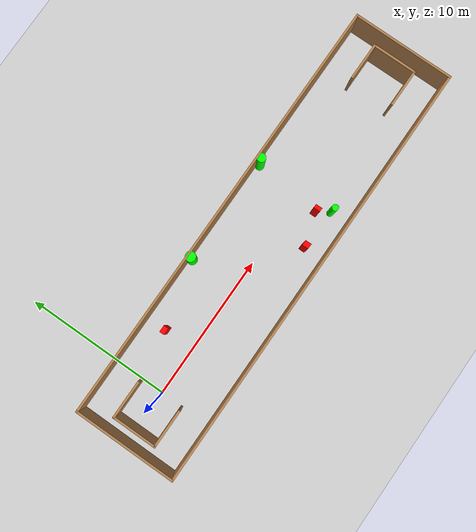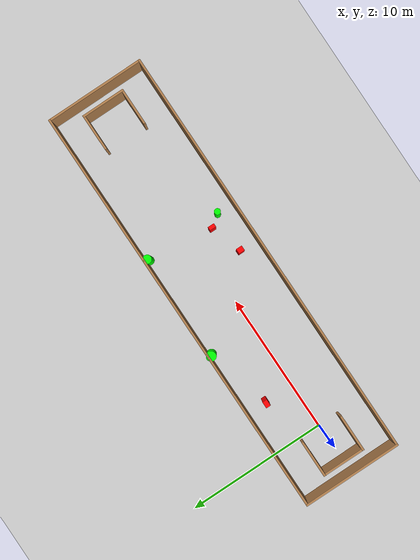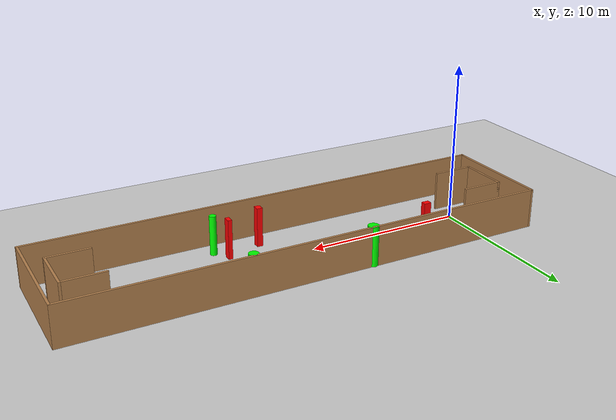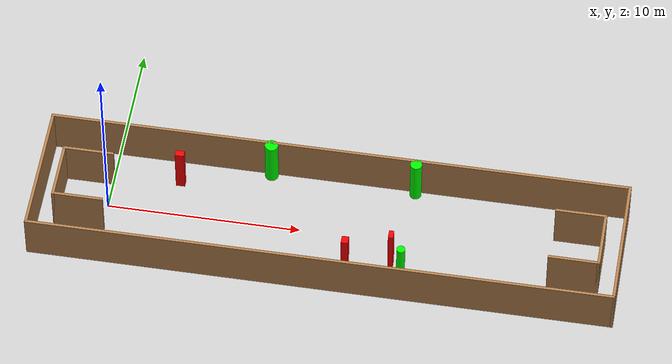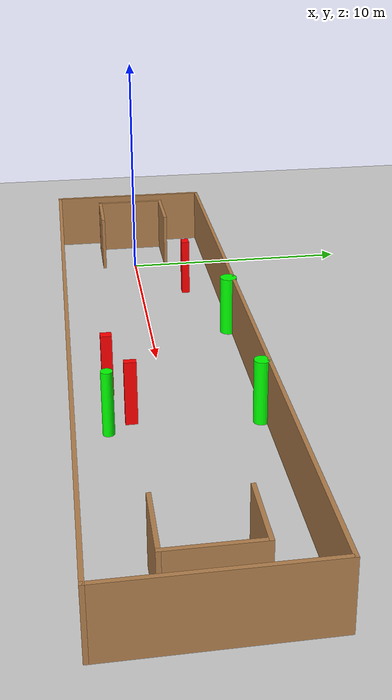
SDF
<sdf version="1.7">
 <world name="default">
  <light name="sun" type="directional">
   <pose>0 0 10 0 -0 0</pose>
   <diffuse>0.8 0.8 0.8 1</diffuse>
   <specular>0.2 0.2 0.2 1</specular>
   <attenuation>
    <range>1000</range>
    <constant>0.9</constant>
    <linear>0.01</linear>
    <quadratic>0.001</quadratic>
   </attenuation>
   <direction>-0.5 0.1 -0.9</direction>
   <spot><inner_angle>0</inner_angle><outer_angle>0</outer_angle><falloff>0</falloff></spot>
  </light>
  <model name="ground_plane">
   <static>1</static>
   <link name="link">
    <collision name="collision">
     <geometry><plane><normal>0 0 1</normal><size>100 100</size></plane></geometry>
     <surface>
      <contact><collide_bitmask>65535</collide_bitmask></contact>
      <friction><ode><mu>100</mu><mu2>50</mu2></ode></friction>
     </surface>
    </collision>
    <visual name="visual">
     <cast_shadows>0</cast_shadows>
     <geometry><plane><normal>0 0 1</normal><size>100 100</size></plane></geometry>
     <material>
      <script><uri>file://media/materials/scripts/gazebo.material</uri><name>Gazebo/Grey</name></script>
     </material>
    </visual>
   </link>
  </model>
  <gravity>0 0 -9.8</gravity>
  <magnetic_field>6e-06 2.3e-05 -4.2e-05</magnetic_field>
  <atmosphere type="adiabatic"/>
  <physics type="ode">
   <max_step_size>0.001</max_step_size>
   <real_time_factor>1</real_time_factor>
   <real_time_update_rate>1000</real_time_update_rate>
  </physics>
  <scene><ambient>0.4 0.4 0.4 1</ambient><background>0.7 0.7 0.7 1</background><shadows>1</shadows></scene>
  <spherical_coordinates>
   <surface_model>EARTH_WGS84</surface_model>
   <latitude_deg>0</latitude_deg>
   <longitude_deg>0</longitude_deg>
   <elevation>0</elevation>
   <heading_deg>0</heading_deg>
  </spherical_coordinates>
  <model name="my_base_walls">
   <link name="Wall_0">
    <collision name="Wall_0_Collision">
     <geometry><box><size>7.15 0.15 2.5</size></box></geometry>
     <pose>0 0 1.25 0 -0 0</pose>
    </collision>
    <visual name="Wall_0_Visual">
     <pose>0 0 1.25 0 -0 0</pose>
     <geometry><box><size>7.15 0.15 2.5</size></box></geometry>
     <material>
      <script><uri>file://media/materials/scripts/gazebo.material</uri><name>Gazebo/Wood</name></script>
      <ambient>1 1 1 1</ambient>
     </material>
     <meta><layer>0</layer></meta>
    </visual>
    <pose>-15 0 0 0 -0 1.5708</pose>
   </link>
   <link name="Wall_10">
    <collision name="Wall_10_Collision">
     <geometry><box><size>2.65 0.15 2.5</size></box></geometry>
     <pose>0 0 1.25 0 -0 0</pose>
    </collision>
    <visual name="Wall_10_Visual">
     <pose>0 0 1.25 0 -0 0</pose>
     <geometry><box><size>2.65 0.15 2.5</size></box></geometry>
     <material>
      <script><uri>file://media/materials/scripts/gazebo.material</uri><name>Gazebo/Wood</name></script>
      <ambient>1 1 1 1</ambient>
     </material>
     <meta><layer>0</layer></meta>
    </visual>
    <pose>-12.75 -1.5 0 0 -0 0</pose>
   </link>
   <link name="Wall_12">
    <collision name="Wall_12_Collision">
     <geometry><box><size>2.65 0.15 2.5</size></box></geometry>
     <pose>0 0 1.25 0 -0 0</pose>
    </collision>
    <visual name="Wall_12_Visual">
     <pose>0 0 1.25 0 -0 0</pose>
     <geometry><box><size>2.65 0.15 2.5</size></box></geometry>
     <material>
      <script><uri>file://media/materials/scripts/gazebo.material</uri><name>Gazebo/Wood</name></script>
      <ambient>1 1 1 1</ambient>
     </material>
     <meta><layer>0</layer></meta>
    </visual>
    <pose>-12.75 1.5 0 0 -0 0</pose>
   </link>
   <link name="Wall_14">
    <collision name="Wall_14_Collision">
     <geometry><box><size>3.15 0.15 2.5</size></box></geometry>
     <pose>0 0 1.25 0 -0 0</pose>
    </collision>
    <visual name="Wall_14_Visual">
     <pose>0 0 1.25 0 -0 0</pose>
     <geometry><box><size>3.15 0.15 2.5</size></box></geometry>
     <material>
      <script><uri>file://media/materials/scripts/gazebo.material</uri><name>Gazebo/Wood</name></script>
      <ambient>1 1 1 1</ambient>
     </material>
     <meta><layer>0</layer></meta>
    </visual>
    <pose>14 0 0 0 -0 -1.5708</pose>
   </link>
   <link name="Wall_15">
    <collision name="Wall_15_Collision">
     <geometry><box><size>2.65 0.15 2.5</size></box></geometry>
     <pose>0 0 1.25 0 -0 0</pose>
    </collision>
    <visual name="Wall_15_Visual">
     <pose>0 0 1.25 0 -0 0</pose>
     <geometry><box><size>2.65 0.15 2.5</size></box></geometry>
     <material>
      <script><uri>file://media/materials/scripts/gazebo.material</uri><name>Gazebo/Wood</name></script>
      <ambient>1 1 1 1</ambient>
     </material>
     <meta><layer>0</layer></meta>
    </visual>
    <pose>12.75 -1.5 0 0 -0 3.14159</pose>
   </link>
   <link name="Wall_17">
    <collision name="Wall_17_Collision">
     <geometry><box><size>2.65 0.15 2.5</size></box></geometry>
     <pose>0 0 1.25 0 -0 0</pose>
    </collision>
    <visual name="Wall_17_Visual">
     <pose>0 0 1.25 0 -0 0</pose>
     <geometry><box><size>2.65 0.15 2.5</size></box></geometry>
     <material>
      <script><uri>file://media/materials/scripts/gazebo.material</uri><name>Gazebo/Wood</name></script>
      <ambient>1 1 1 1</ambient>
     </material>
     <meta><layer>0</layer></meta>
    </visual>
    <pose>12.75 1.5 0 0 -0 3.14159</pose>
   </link>
   <link name="Wall_2">
    <collision name="Wall_2_Collision">
     <geometry><box><size>30.15 0.15 2.5</size></box></geometry>
     <pose>0 0 1.25 0 -0 0</pose>
    </collision>
    <visual name="Wall_2_Visual">
     <pose>0 0 1.25 0 -0 0</pose>
     <geometry><box><size>30.15 0.15 2.5</size></box></geometry>
     <material>
      <script><uri>file://media/materials/scripts/gazebo.material</uri><name>Gazebo/Wood</name></script>
      <ambient>1 1 1 1</ambient>
     </material>
     <meta><layer>0</layer></meta>
    </visual>
    <pose>-0 -3.5 0 0 -0 0</pose>
   </link>
   <link name="Wall_4">
    <collision name="Wall_4_Collision">
     <geometry><box><size>30.15 0.15 2.5</size></box></geometry>
     <pose>0 0 1.25 0 -0 0</pose>
    </collision>
    <visual name="Wall_4_Visual">
     <pose>0 0 1.25 0 -0 0</pose>
     <geometry><box><size>30.15 0.15 2.5</size></box></geometry>
     <material>
      <script><uri>file://media/materials/scripts/gazebo.material</uri><name>Gazebo/Wood</name></script>
      <ambient>1 1 1 1</ambient>
     </material>
     <meta><layer>0</layer></meta>
    </visual>
    <pose>-0 3.5 0 0 -0 0</pose>
   </link>
   <link name="Wall_6">
    <collision name="Wall_6_Collision">
     <geometry><box><size>7.15 0.15 2.5</size></box></geometry>
     <pose>0 0 1.25 0 -0 0</pose>
    </collision>
    <visual name="Wall_6_Visual">
     <pose>0 0 1.25 0 -0 0</pose>
     <geometry><box><size>7.15 0.15 2.5</size></box></geometry>
     <material>
      <script><uri>file://media/materials/scripts/gazebo.material</uri><name>Gazebo/Wood</name></script>
      <ambient>1 1 1 1</ambient>
     </material>
     <meta><layer>0</layer></meta>
    </visual>
    <pose>15 0 0 0 -0 -1.5708</pose>
   </link>
   <link name="Wall_9">
    <collision name="Wall_9_Collision">
     <geometry><box><size>3.15 0.15 2.5</size></box></geometry>
     <pose>0 0 1.25 0 -0 0</pose>
    </collision>
    <visual name="Wall_9_Visual">
     <pose>0 0 1.25 0 -0 0</pose>
     <geometry><box><size>3.15 0.15 2.5</size></box></geometry>
     <material>
      <script><uri>file://media/materials/scripts/gazebo.material</uri><name>Gazebo/Wood</name></script>
      <ambient>1 1 1 1</ambient>
     </material>
     <meta><layer>0</layer></meta>
    </visual>
    <pose>-14 0 0 0 -0 -1.5708</pose>
   </link>
   <static>1</static>
   <pose>11.5 0 0 0 -0 0</pose>
  </model>
  <model name="cylinder1">
   <static>1</static>
   <link name="link">
    <inertial>
     <mass>1</mass>
     <inertia><ixx>0.5</ixx><ixy>0</ixy><ixz>0</ixz><iyy>0.5</iyy><iyz>0</iyz><izz>1</izz></inertia>
    </inertial>
    <collision name="collision">
     <geometry><cylinder><radius>0.21823161764477886</radius><length>2.5</length></cylinder></geometry>
    </collision>
    <visual name="visual">
     <geometry><cylinder><radius>0.21823161764477886</radius><length>2.5</length></cylinder></geometry>
     <material>
      <ambient>0 1 0 1</ambient>
      <diffuse>0 1 0 1</diffuse>
      <specular>0.1 0.1 0.1 1</specular>
      <emissive>0 0 0 0</emissive>
     </material>
    </visual>
   </link>
   <pose>15.547392932297226 -2.2467148358113334 1.25 0 0 0</pose>
  </model>
  <model name="cylinder2">
   <static>1</static>
   <link name="link">
    <inertial>
     <mass>1</mass>
     <inertia><ixx>0.5</ixx><ixy>0</ixy><ixz>0</ixz><iyy>0.5</iyy><iyz>0</iyz><izz>1</izz></inertia>
    </inertial>
    <collision name="collision">
     <geometry><cylinder><radius>0.3014625161107419</radius><length>2.5</length></cylinder></geometry>
    </collision>
    <visual name="visual">
     <geometry><cylinder><radius>0.3014625161107419</radius><length>2.5</length></cylinder></geometry>
     <material>
      <ambient>0 1 0 1</ambient>
      <diffuse>0 1 0 1</diffuse>
      <specular>0.1 0.1 0.1 1</specular>
      <emissive>0 0 0 0</emissive>
     </material>
    </visual>
   </link>
   <pose>15.51200267535537 3.2524223958158913 1.25 0 0 0</pose>
  </model>
  <model name="cylinder3">
   <static>1</static>
   <link name="link">
    <inertial>
     <mass>1</mass>
     <inertia><ixx>0.5</ixx><ixy>0</ixy><ixz>0</ixz><iyy>0.5</iyy><iyz>0</iyz><izz>1</izz></inertia>
    </inertial>
    <collision name="collision">
     <geometry><cylinder><radius>0.3455583386603033</radius><length>2.5</length></cylinder></geometry>
    </collision>
    <visual name="visual">
     <geometry><cylinder><radius>0.3455583386603033</radius><length>2.5</length></cylinder></geometry>
     <material>
      <ambient>0 1 0 1</ambient>
      <diffuse>0 1 0 1</diffuse>
      <specular>0.1 0.1 0.1 1</specular>
      <emissive>0 0 0 0</emissive>
     </material>
    </visual>
   </link>
   <pose>7.983026299859324 3.3077314645930684 1.25 0 0 0</pose>
  </model>
  <model name="box1">
   <static>1</static>
   <link name="link">
    <inertial>
     <mass>1</mass>
     <inertia><ixx>0.083</ixx><ixy>0</ixy><ixz>0</ixz><iyy>0.083</iyy><iyz>0</iyz><izz>0.083</izz></inertia>
    </inertial>
    <collision name="collision">
     <geometry><box><size>0.2582951480857932 0.45699892507604695 2.5</size></box></geometry>
    </collision>
    <visual name="visual">
     <geometry><box><size>0.2582951480857932 0.45699892507604695 2.5</size></box></geometry>
     <material>
      <ambient>1 0 0 1</ambient>
      <diffuse>1 0 0 1</diffuse>
      <specular>0.1 0.1 0.1 1</specular>
      <emissive>0 0 0 0</emissive>
     </material>
    </visual>
    <sensor name="my_contact" type="contact">
     <contact><collision>box_collision</collision><topic>__default_topic__</topic></contact>
    </sensor>
   </link>
   <pose>14.919687376887467 -1.3919942767289553 1.25 0 0 0</pose>
  </model>
  <model name="box2">
   <static>1</static>
   <link name="link">
    <inertial>
     <mass>1</mass>
     <inertia><ixx>0.083</ixx><ixy>0</ixy><ixz>0</ixz><iyy>0.083</iyy><iyz>0</iyz><izz>0.083</izz></inertia>
    </inertial>
    <collision name="collision">
     <geometry><box><size>0.46649605163477287 0.33698865216521007 2.5</size></box></geometry>
    </collision>
    <visual name="visual">
     <geometry><box><size>0.46649605163477287 0.33698865216521007 2.5</size></box></geometry>
     <material>
      <ambient>1 0 0 1</ambient>
      <diffuse>1 0 0 1</diffuse>
      <specular>0.1 0.1 0.1 1</specular>
      <emissive>0 0 0 0</emissive>
     </material>
    </visual>
    <sensor name="my_contact" type="contact">
     <contact><collision>box_collision</collision><topic>__default_topic__</topic></contact>
    </sensor>
   </link>
   <pose>3.426562873486221 2.043829293238981 1.25 0 0 0</pose>
  </model>
  <model name="box3">
   <static>1</static>
   <link name="link">
    <inertial>
     <mass>1</mass>
     <inertia><ixx>0.083</ixx><ixy>0</ixy><ixz>0</ixz><iyy>0.083</iyy><iyz>0</iyz><izz>0.083</izz></inertia>
    </inertial>
    <collision name="collision">
     <geometry><box><size>0.3576467261299746 0.42833125710943504 2.5</size></box></geometry>
    </collision>
    <visual name="visual">
     <geometry><box><size>0.3576467261299746 0.42833125710943504 2.5</size></box></geometry>
     <material>
      <ambient>1 0 0 1</ambient>
      <diffuse>1 0 0 1</diffuse>
      <specular>0.1 0.1 0.1 1</specular>
      <emissive>0 0 0 0</emissive>
     </material>
    </visual>
    <sensor name="my_contact" type="contact">
     <contact><collision>box_collision</collision><topic>__default_topic__</topic></contact>
    </sensor>
   </link>
   <pose>12.662430699275756 -2.1057448736525095 1.25 0 0 0</pose>
  </model>
 </world>
</sdf>
